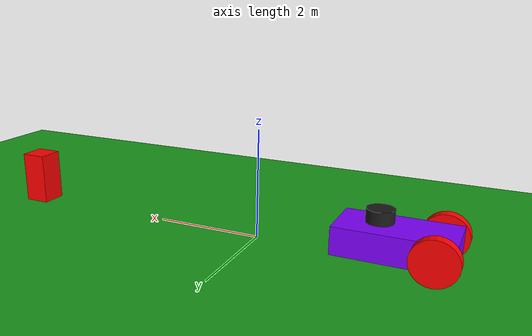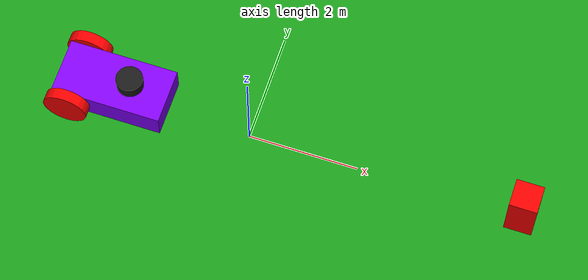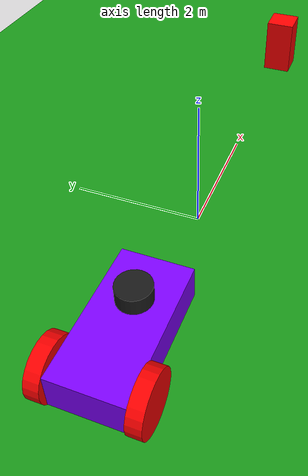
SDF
<?xml version="1.0" ?>
<sdf version="1.9">
  <world name="explore_world">
    <scene>
      <ambient>0.4 0.4 0.4 1</ambient>
      <background>0.6 0.8 0.6 1</background>
      <shadows>true</shadows>
    </scene>
    <gravity>0 0 -9.8</gravity>

    <!-- Plugins de mundo -->
    <plugin filename="libignition-gazebo-physics-system.so" name="ignition::gazebo::systems::Physics"/>
    <plugin filename="libignition-gazebo-user-commands-system.so" name="ignition::gazebo::systems::UserCommands"/>
    <plugin filename="libignition-gazebo-scene-broadcaster-system.so" name="ignition::gazebo::systems::SceneBroadcaster"/>
    <plugin filename="libignition-gazebo-sensors-system.so" name="ignition::gazebo::systems::Sensors">
      <render_engine>ogre2</render_engine>
    </plugin>

    <!-- Chão -->
    <model name="ground_plane">
      <static>true</static>
      <link name="link">
        <collision name="collision">
          <geometry><plane><normal>0 0 1</normal><size>50 50</size></plane></geometry>
        </collision>
        <visual name="visual">
          <geometry><plane><normal>0 0 1</normal><size>50 50</size></plane></geometry>
          <material>
            <ambient>0.1 0.4 0.1 1</ambient>
            <diffuse>0.1 0.6 0.1 1</diffuse>
            <specular>0 0 0 1</specular>
          </material>
        </visual>
      </link>
    </model>

    <!-- Obstáculo -->
    <model name="box_obstacle">
      <static>true</static>
      <pose>5 0 0.5 0 0 0</pose>
      <link name="link">
        <collision name="col"><geometry><box><size>0.5 0.5 1.0</size></box></geometry></collision>
        <visual name="vis"><geometry><box><size>0.5 0.5 1.0</size></box></geometry><material><diffuse>1 0 0 1</diffuse></material></visual>
      </link>
    </model>

    <!-- Luz -->
    <light name="sun" type="directional">
      <pose>0 0 10 0 0 0</pose>
      <direction>-0.5 0.1 -1</direction>
      <diffuse>0.8 0.8 0.8 1</diffuse>
      <specular>0.2 0.2 0.2 1</specular>
      <cast_shadows>true</cast_shadows>
    </light>

    <!-- Inclui o modelo com câmera -->

<include>
  <uri>file:///root/workshop_assets/assets/models/vehicle_blue/model_without_camera.sdf</uri>
  <pose>-3 0 0 0 0 0</pose>
  <name>vehicle_blue</name>
</include>

  </world>
</sdf>

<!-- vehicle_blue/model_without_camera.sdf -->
<sdf version="1.9">
    <!-- ==================== ROBÔ ==================== -->
    <model name="vehicle_blue" canonical_link="base_link">

      <!-- Frames auxiliares -->
      <frame name="caster_frame" attached_to="base_link">
        <pose>0.8 0 -0.2 0 0 0</pose>
      </frame>
      <frame name="lidar_frame" attached_to="base_link">
        <pose>0.8 0 0.5 0 0 0</pose>
      </frame>

      <!-- Chassi -->
      <link name="base_link">
        <pose relative_to="__model__">0.5 0 0.4 0 0 0</pose>
        <inertial>
          <mass>1.14395</mass>
          <inertia>
            <ixx>0.095329</ixx><ixy>0</ixy><ixz>0</ixz>
            <iyy>0.381317</iyy><iyz>0</iyz><izz>0.476646</izz>
          </inertia>
        </inertial>

        <visual name="visual">
          <geometry><box><size>2.0 1.0 0.5</size></box></geometry>
          <material>
            <ambient>0.0 1.0 0.0 1</ambient>
            <diffuse>0.5 0.0 1.0 1</diffuse>
            <specular>1.0 0.0 0.5 1</specular>
          </material>
        </visual>

        <collision name="collision">
          <geometry><box><size>2.0 1.0 0.5</size></box></geometry>
        </collision>

        <!-- IMU no chassi -->
        <sensor name="imu_sensor" type="imu">
          <always_on>1</always_on>
          <update_rate>1</update_rate>
          <visualize>true</visualize>
          <topic>imu</topic>
        </sensor>
      </link>

      <!-- LiDAR em link próprio -->
      <link name="lidar_link">
        <pose>0.8 0.0 0.8 0 0 0</pose>
        <inertial>
          <mass>0.1</mass>
          <inertia>
            <ixx>0.000166667</ixx><iyy>0.000166667</iyy><izz>0.000166667</izz>
          </inertia>
        </inertial>
        <collision name="collision">
          <geometry><cylinder><radius>0.24</radius><length>0.24</length></cylinder></geometry>
        </collision>
        <visual name="visual">
          <geometry><cylinder><radius>0.24</radius><length>0.24</length></cylinder></geometry>
          <material><diffuse>0.1 0.1 0.1 1</diffuse></material>
        </visual>

        <sensor name="gpu_lidar" type="gpu_lidar">
          <pose relative_to="lidar_frame">0 0 0 0 0 0</pose>
          <topic>/scan</topic>
          <update_rate>10</update_rate>
          <lidar>
            <scan>
              <horizontal>
                <samples>250</samples>
                <resolution>1</resolution>
                <min_angle>-2.0</min_angle>
                <max_angle> 2.0</max_angle>
              </horizontal>
              <vertical>
                <samples>1</samples>
                <resolution>0.01</resolution>
                <min_angle>0</min_angle>
                <max_angle>0</max_angle>
              </vertical>
            </scan>
            <range>
              <min>0.08</min>
              <max>10.0</max>
              <resolution>0.01</resolution>
            </range>
          </lidar>
          <always_on>1</always_on>
          <visualize>true</visualize>
        </sensor>
      </link>

      <!-- Junta fixa LiDAR -->
      <joint name="lidar_fixed" type="fixed">
        <parent>base_link</parent>
        <child>lidar_link</child>
      </joint>

      <!-- Câmera em link próprio + sensor -->

      <!-- Rodas -->
      <link name="roda_esquerda">
        <pose relative_to="base_link">-0.7 0.6 0 -1.5707 0 0</pose>
        <inertial>
          <mass>1</mass>
          <inertia>
            <ixx>0.043333</ixx><ixy>0</ixy><ixz>0</ixz>
            <iyy>0.043333</iyy><iyz>0</iyz><izz>0.08</izz>
          </inertia>
        </inertial>
        <visual name="visual">
          <geometry><cylinder><radius>0.4</radius><length>0.2</length></cylinder></geometry>
          <material><ambient>1 0 0 1</ambient><diffuse>1 0 0 1</diffuse><specular>1 0 0 1</specular></material>
        </visual>
        <collision name="collision">
          <geometry><cylinder><radius>0.4</radius><length>0.2</length></cylinder></geometry>
        </collision>
      </link>

      <link name="roda_direita">
        <pose relative_to="base_link">-0.7 -0.6 0 -1.5707 0 0</pose>
        <inertial>
          <mass>1</mass>
          <inertia>
            <ixx>0.043333</ixx><ixy>0</ixy><ixz>0</ixz>
            <iyy>0.043333</iyy><iyz>0</iyz><izz>0.08</izz>
          </inertia>
        </inertial>
        <visual name="visual">
          <geometry><cylinder><radius>0.4</radius><length>0.2</length></cylinder></geometry>
          <material><ambient>1 0 0 1</ambient><diffuse>1 0 0 1</diffuse><specular>1 0 0 1</specular></material>
        </visual>
        <collision name="collision">
          <geometry><cylinder><radius>0.4</radius><length>0.2</length></cylinder></geometry>
        </collision>
      </link>

      <link name="caster">
        <pose relative_to="caster_frame"/>
        <inertial>
          <mass>1</mass>
          <inertia>
            <ixx>0.016</ixx><ixy>0</ixy><ixz>0</ixz>
            <iyy>0.016</iyy><iyz>0</iyz><izz>0.016</izz>
          </inertia>
        </inertial>
        <visual name="visual">
          <geometry><sphere><radius>0.2</radius></sphere></geometry>
          <material><ambient>0 1 0 1</ambient><diffuse>0 1 0 1</diffuse><specular>0 1 0 1</specular></material>
        </visual>
        <collision name="collision">
          <geometry><sphere><radius>0.2</radius></sphere></geometry>
        </collision>
      </link>

      <!-- Juntas -->
      <joint name="junta_roda_esquerda" type="revolute">
        <pose relative_to="roda_esquerda"/>
        <parent>base_link</parent>
        <child>roda_esquerda</child>
        <axis>
          <xyz expressed_in="__model__">0 1 0</xyz>
          <limit><lower>-1.79769e+308</lower><upper>1.79769e+308</upper></limit>
        </axis>
      </joint>

      <joint name="junta_roda_direita" type="revolute">
        <pose relative_to="roda_direita"/>
        <parent>base_link</parent>
        <child>roda_direita</child>
        <axis>
          <xyz expressed_in="__model__">0 1 0</xyz>
          <limit><lower>-1.79769e+308</lower><upper>1.79769e+308</upper></limit>
        </axis>
      </joint>

      <joint name="caster_wheel" type="ball">
        <parent>base_link</parent>
        <child>caster</child>
      </joint>

      <!-- Plugins do modelo -->
      <plugin filename="libignition-gazebo-diff-drive-system.so" name="ignition::gazebo::systems::DiffDrive">
        <left_joint>junta_roda_esquerda</left_joint>
        <right_joint>junta_roda_direita</right_joint>
        <wheel_separation>1.2</wheel_separation>
        <wheel_radius>0.4</wheel_radius>
        <odom_publish_frequency>1</odom_publish_frequency>
        <topic>/cmd_vel</topic>
        <odom_topic>/odom</odom_topic>
      </plugin>

      <plugin filename="libignition-gazebo-triggered-publisher-system.so" name="ignition::gazebo::systems::TriggeredPublisher">
        <input type="ignition.msgs.Boolean" topic="/wall/touched">
          <match>data: true</match>
        </input>
        <output type="ignition.msgs.Twist" topic="/cmd_vel">
          linear: {x: 0.0}, angular: {z: 0.0}
        </output>
      </plugin>

    </model>
</sdf>
